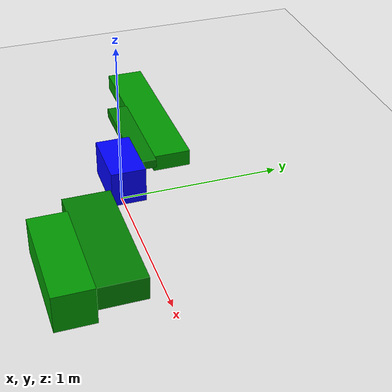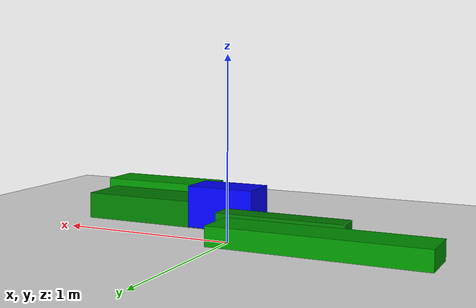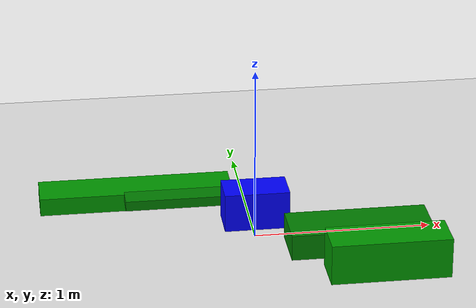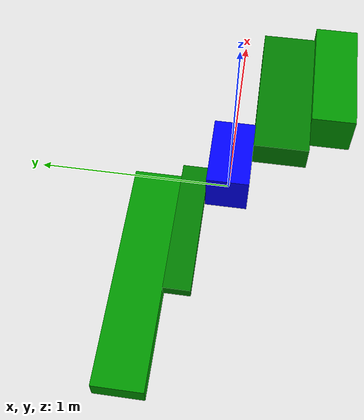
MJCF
<mujoco>
    <worldbody>
    <light diffuse=".5 .5 .5" pos="0 0 3" dir="0 0 -1"/>
    <geom type="plane" size="5 5 0.1" rgba=".9 0.9 0.9 1"/>
    <body name="main body" pos="0 0 .2">
        <joint type="free"/>
        <geom type="box" size="0.1823618432185498 0.10347852472478945 0.10960618824937188" rgba="0 0 1 1" mass="1"/>
        <site name="marker" pos="0 0 0" size="0.05"/>
        <site name="robot_center" pos="0 0 0" size="0.01"/>
        <body name="left_leg1" pos="-0.38 0.16803071267335523 -0.020131263965421534">
            <joint name="left_leg1_joint" type="hinge" axis="0 1 0" pos="0 0 0"/>
            <geom type="box" size="0.3379841249856572 0.06455218794856579 0.028613444513081326" rgba="0 .5 0 1" mass="1"/>
            <body name="left_leg2" pos="-0.2660716691165726 0.18098268318293542 -0.04">
                <joint name="left_leg2_joint" type="hinge" axis="0 1 0" pos="0 0 0"/>
                <geom type="box" size="0.5475043629076538 0.11643049523436962 0.05111184958501502" rgba="0 .6 0 1" mass="1"/>
            </body>
        </body>
        <body name="right_leg1" pos="0.5473671382621346 -0.2475361944180854 -0.08904395584949436">
            <joint name="right_leg1_joint" type="hinge" axis="0 1 0" pos="0 0 0"/>
            <geom type="box" size="0.3976391402604684 0.14405766969329595 0.07332476641805077" rgba="0 .5 0 1" mass="1"/>
            <body name="right_leg2" pos="0.1150039822423069 -0.25995009125388463 -0.010591158288174191">
                <joint name="right_leg2_joint" type="hinge" axis="0 1 0" pos="0 0 0"/>
                <geom type="box" size="0.33237558943717926 0.1158924215605887 0.12773692616278537" rgba="0 .6 0 1" mass="1"/>
            </body>
        </body>
    </body>
    </worldbody>
    <sensor>
        <framepos objtype="site" objname="marker"/>
        <velocimeter name="robot_velocity" site="robot_center"/>
    </sensor>
    <actuator>
        <position joint="left_leg1_joint" kp="10"/>
        <position joint="left_leg2_joint" kp="10"/>
        <position joint="right_leg1_joint" kp="10"/>
        <position joint="right_leg2_joint" kp="10"/>
    </actuator>
</mujoco>
